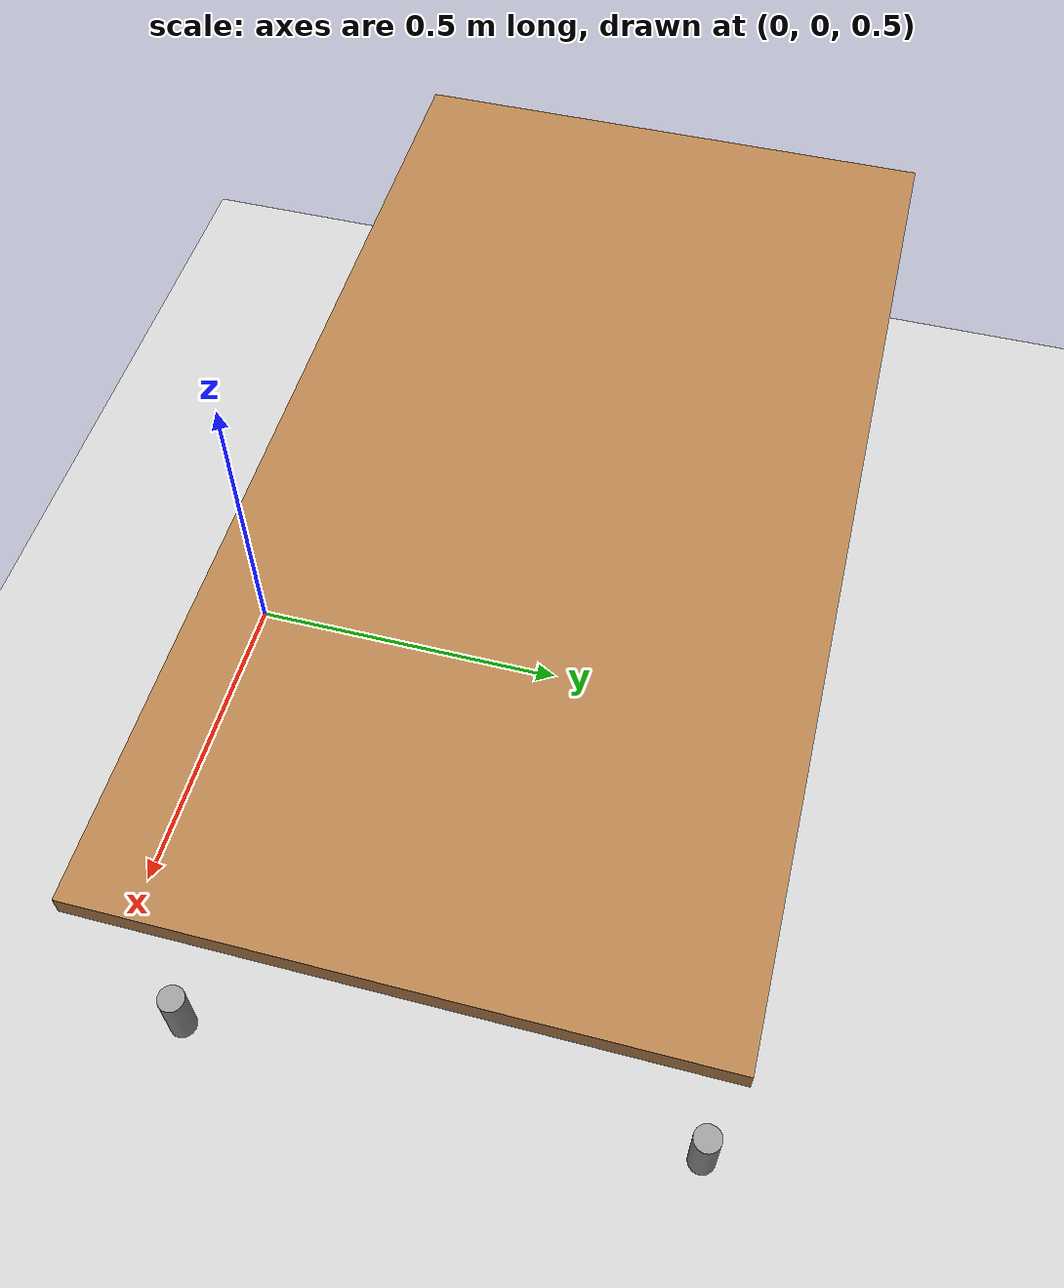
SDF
<?xml version="1.0" ?>
<sdf version="1.4">
  <!-- We use a custom world for the iiwa so that the camera angle is launched correctly. -->
  <!-- One can change this world to his needs or use another one. -->

  <world name="default">

    <include>
      <uri>model://ground_plane</uri>
    </include>

    <!-- Global light source -->
    <include>
      <uri>model://sun</uri>
    </include>

    <include>
      <uri>model://table_short</uri>
      <name>table</name>
      <pose>0 0.5 0 0 0 0</pose>
      <static>1</static>
    </include>

    <physics name="default_physics" default="0" type="ode">
      <max_step_size>0.001</max_step_size>
      <real_time_factor>1</real_time_factor>
      <real_time_update_rate>1000</real_time_update_rate>
      <ode>
        <solver>
          <type>quick</type>
          <iters>150</iters>
          <sor>1.0</sor> <!-- Important, see issue #2209 -->
          <use_dynamic_moi_rescaling>false</use_dynamic_moi_rescaling>
        </solver>
      </ode>
    </physics>

    <!-- Focus camera -->
    <gui fullscreen='0'>
      <camera name='user_camera'>
	<pose>4.927360 -4.376610 3.740080 0.000000 0.275643 2.356190</pose>
	<view_controller>orbit</view_controller>
      </camera>
    </gui>

  </world>

</sdf>

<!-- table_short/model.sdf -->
<sdf version="1.5">
  <model name="table">
    <static>true</static>
    <link name="link">
      <collision name="surface">
        <pose>0 0 1.0 0 0 0</pose>
        <geometry>
          <box>
            <size>1.5 0.8 0.03</size>
          </box>
        </geometry>
        <surface>
          <friction>
            <ode>
              <mu>0.6</mu>
              <mu2>0.6</mu2>
            </ode>
          </friction>
        </surface>
      </collision>
      <visual name="visual1">
        <pose>0 0 1.0 0 0 0</pose>
        <geometry>
          <box>
            <size>1.5 0.8 0.03</size>
          </box>
        </geometry>
        <material>
          <script>
            <uri>file://media/materials/scripts/gazebo.material</uri>
            <name>Gazebo/Wood</name>
          </script>
        </material>
      </visual>
      <collision name="front_left_leg">
        <pose>0.68 0.38 0.5 0 0 0</pose>
        <geometry>
          <cylinder>
            <radius>0.02</radius>
            <length>0.10</length>
          </cylinder>
        </geometry>
      </collision>
      <visual name="front_left_leg">
        <pose>0.68 0.38 0.5 0 0 0</pose>
        <geometry>
          <cylinder>
            <radius>0.02</radius>
            <length>0.10</length>
          </cylinder>
        </geometry>
        <material>
          <script>
            <uri>file://media/materials/scripts/gazebo.material</uri>
            <name>Gazebo/Grey</name>
          </script>
        </material>
      </visual>
      <collision name="front_right_leg">
        <pose>0.68 -0.38 0.5 0 0 0</pose>
        <geometry>
          <cylinder>
            <radius>0.02</radius>
            <length>0.10</length>
          </cylinder>
        </geometry>
      </collision>
      <visual name="front_right_leg">
        <pose>0.68 -0.38 0.5 0 0 0</pose>
        <geometry>
          <cylinder>
            <radius>0.02</radius>
            <length>0.10</length>
          </cylinder>
        </geometry>
        <material>
          <script>
            <uri>file://media/materials/scripts/gazebo.material</uri>
            <name>Gazebo/Grey</name>
          </script>
        </material>
      </visual>
      <collision name="back_right_leg">
        <pose>-0.68 -0.38 0.5 0 0 0</pose>
        <geometry>
          <cylinder>
            <radius>0.02</radius>
            <length>0.10</length>
          </cylinder>
        </geometry>
      </collision>
      <visual name="back_right_leg">
        <pose>-0.68 -0.38 0.5 0 0 0</pose>
        <geometry>
          <cylinder>
            <radius>0.02</radius>
            <length>0.10</length>
          </cylinder>
        </geometry>
        <material>
          <script>
            <uri>file://media/materials/scripts/gazebo.material</uri>
            <name>Gazebo/Grey</name>
          </script>
        </material>
      </visual>
      <collision name="back_left_leg">
        <pose>-0.68 0.38 0.5 0 0 0</pose>
        <geometry>
          <cylinder>
            <radius>0.02</radius>
            <length>0.10</length>
          </cylinder>
        </geometry>
      </collision>
      <visual name="back_left_leg">
        <pose>-0.68 0.38 0.5 0 0 0</pose>
        <geometry>
          <cylinder>
            <radius>0.02</radius>
            <length>0.10</length>
          </cylinder>
        </geometry>
        <material>
          <script>
            <uri>file://media/materials/scripts/gazebo.material</uri>
            <name>Gazebo/Grey</name>
          </script>
        </material>
      </visual>
    </link>
  </model>
</sdf>
